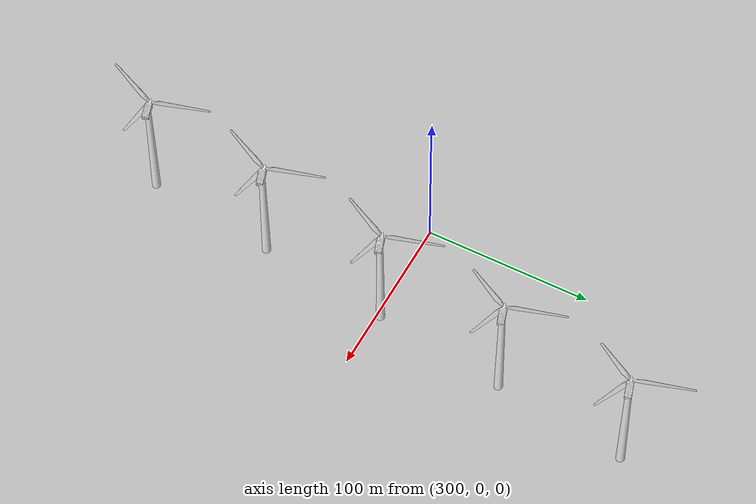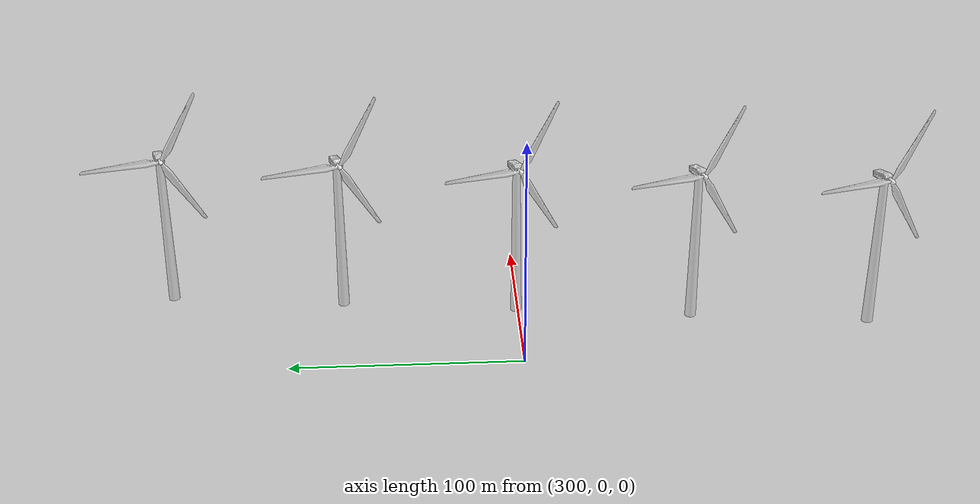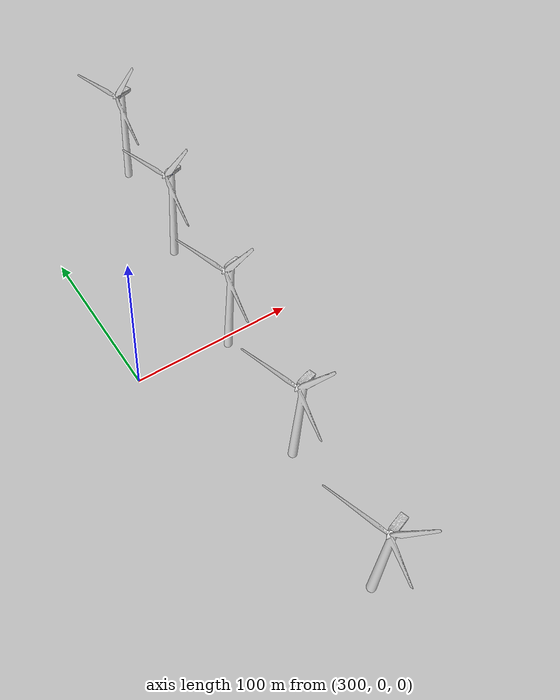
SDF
<sdf version="1.5">
 <world name="default">
  <physics name="default_physics" default="0" type="ode">
   <gravity>0 0 -9.8066</gravity>
   <ode>
    <solver>
     <type>quick</type>
     <iters>10</iters>
     <sor>1.3</sor>
     <use_dynamic_moi_rescaling>0</use_dynamic_moi_rescaling>
    </solver>
    <constraints>
     <cfm>0</cfm>
     <erp>0.2</erp>
     <contact_max_correcting_vel>100</contact_max_correcting_vel>
     <contact_surface_layer>0.001</contact_surface_layer>
    </constraints>
   </ode>
   <max_step_size>0.004</max_step_size>
   <real_time_factor>1</real_time_factor>
   <real_time_update_rate>250</real_time_update_rate>
   <magnetic_field>6.0e-6 2.3e-5 -4.2e-5</magnetic_field>
  </physics>
  <light type="directional" name="sun">
   <pose>40 30 300 0 0 0</pose>
   <diffuse>1 1 1 1</diffuse>
   <specular>.7 .7 .7 1</specular>
   <direction>-0.2 0.2 -1.2</direction>
   <attenuation>
    <range>1000</range>
    <constant>0.9</constant>
    <linear>0.01</linear>
    <quadratic>0.001</quadratic>
   </attenuation>
  </light>
  <model name="vestas1">
   <pose>360 0 -8.043 0 0 0.3</pose>
   <include><uri>model://Vestas_V52</uri></include>
  </model>
  <model name="vestas2">
   <pose>350 -80 -8.043 0 0 0.3</pose>
   <include><uri>model://Vestas_V52</uri></include>
  </model>
  <model name="vestas3">
   <pose>370 80 -8.043 0 0 0.3</pose>
   <include><uri>model://Vestas_V52</uri></include>
  </model>
  <model name="vestas4">
   <pose>380 160 -8.043 0 0 0.3</pose>
   <include><uri>model://Vestas_V52</uri></include>
  </model>
  <model name="vestas5">
   <pose>340 -160 -8.043 0 0 0.3</pose>
   <include><uri>model://Vestas_V52</uri></include>
  </model>
  <scene><ambient>0.0 0.0 0.0 1.0</ambient><shadows>0</shadows></scene>
 </world>
</sdf>

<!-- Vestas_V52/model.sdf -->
<sdf version="1.6">
  <model name="Vestas_V52">
    <static>true</static>
    <link name="link">
      <collision name="collision">
        <geometry>
          <mesh>
            <uri>model://Vestas_V52/meshes/model.dae</uri>
          </mesh>
        </geometry>
      </collision>
      <visual name="wind_turbine">
        <geometry>
          <mesh>
            <uri>model://Vestas_V52/meshes/model.dae</uri>
	         </mesh>
        </geometry>
     </visual>
    </link>
  </model>
</sdf>
